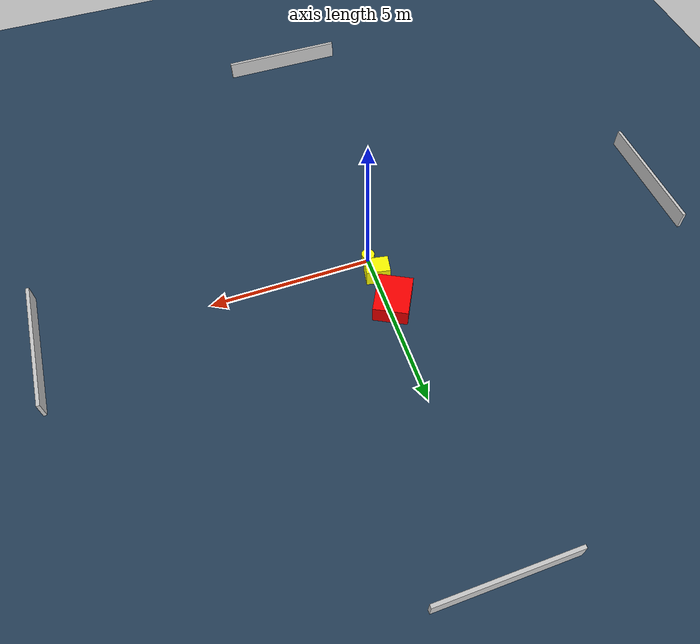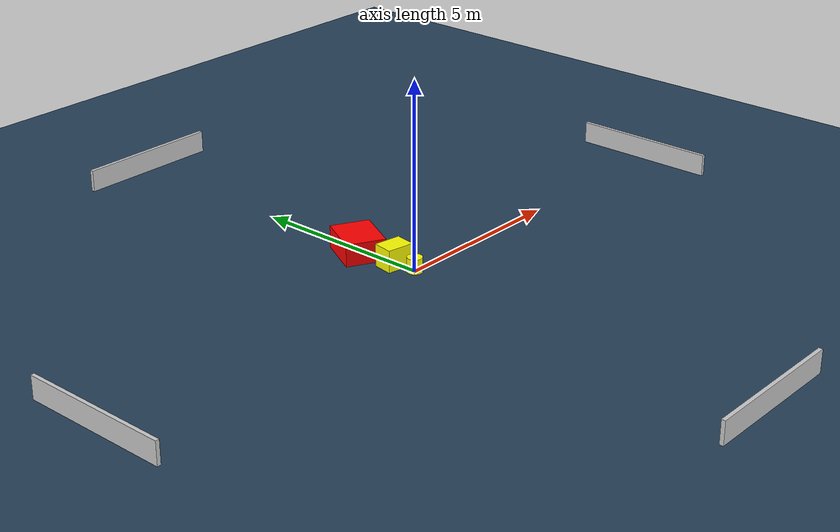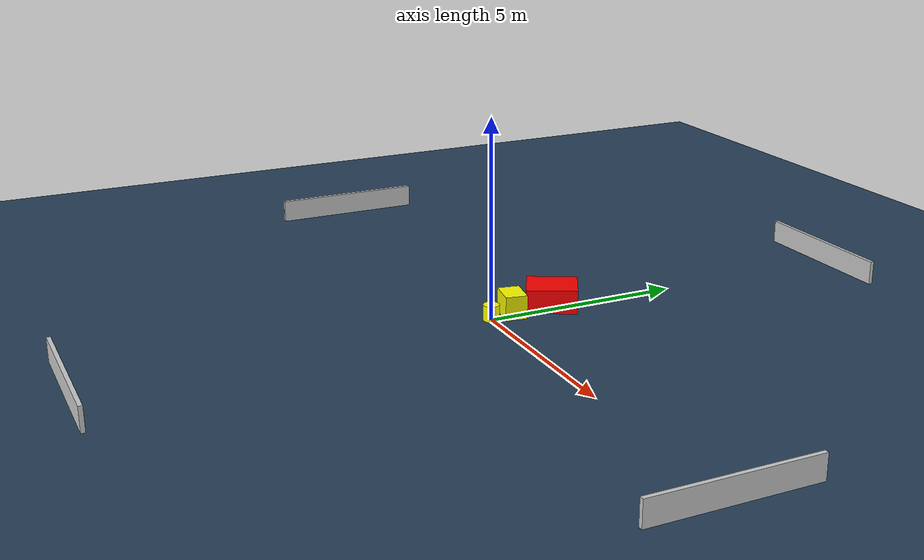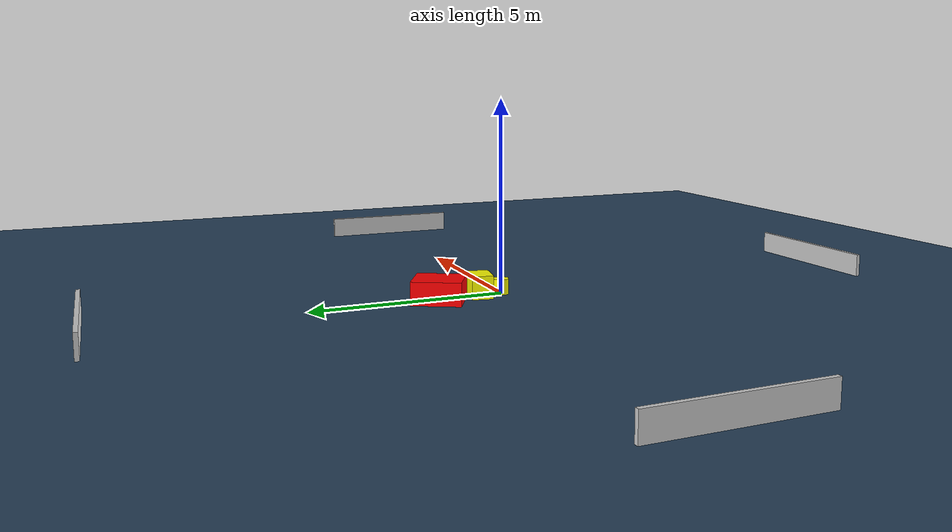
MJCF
<?xml version="1.0" ?>
<mujoco model="generated_environment">
  <option timestep="0.01" integrator="RK4" cone="elliptic"/>
  <default>
    <geom density="1"/>
  </default>
  <asset>
    <texture builtin="gradient" height="3072" name="skybox" rgb1="0.3 0.5 0.7" rgb2="0 0 0" type="skybox" width="512"/>
    <texture builtin="checker" height="300" name="groundplane" rgb1="0.2 0.3 0.4" rgb2="0.1 0.2 0.3" type="2d" width="300"/>
    <material name="groundplane" reflectance="0.2" texrepeat="5 5" texture="groundplane"/>
  </asset>
  <worldbody>
    <light dir="0 0 -1" directional="true" pos="0 0 1.5"/>
    <geom condim="3" friction="0.5 0.005 0.001" material="groundplane" name="floor" pos="0 0 0" size="0 0 0.05" type="plane"/>
    <body name="walls">
      <geom name="wall_1" condim="4" pos="-10.0 0.0 0.3" rgba="0.800000011920929 0.800000011920929 0.800000011920929 1.0" size="0.05 2.0 0.3" type="box"/>
      <geom name="wall_2" condim="4" pos="10.0 0.0 0.3" rgba="0.800000011920929 0.800000011920929 0.800000011920929 1.0" size="0.05 2.0 0.3" type="box"/>
      <geom name="wall_3" condim="4" pos="0.0 -10.0 0.3" rgba="0.800000011920929 0.800000011920929 0.800000011920929 1.0" size="2.0 0.05 0.3" type="box"/>
      <geom name="wall_4" condim="4" pos="0.0 10.0 0.3" rgba="0.800000011920929 0.800000011920929 0.800000011920929 1.0" size="2.0 0.05 0.3" type="box"/>
    </body>
    <body name="robot">
      <joint name="joint_x" type="slide" pos="0 0 0" axis="1 0 0"/>
      <joint name="joint_y" type="slide" pos="0 0 0" axis="0 1 0"/>
      <geom name="robot" type="cylinder" pos="0.0 0.0 0.2" size="0.2 0.2 0.0" mass="5.0" friction="1.0 0.005 0.0001" condim="4" rgba="1.0 1.0 0.0 1.0"/>
    </body>
    <body name="obstacle_1_movable">
      <geom name="obstacle_1_movable" condim="4" pos="-0.08313491638570868 0.6133638009624786 0.3" euler="0 0 349.9017781182017" friction="0.0 0.005 0.001" rgba="1.0 1.0 0.0 1.0" size="0.3678596874105915 0.27274918411997834 0.3" type="box" mass="0.1"/>
      <joint type="free"/>
    </body>
    <body name="obstacle_2_static">
      <geom name="obstacle_2_static" condim="4" pos="-0.1753684710905757 1.7540438488053447 0.3" euler="0 0 242.0649602275886" friction="0.0 0.005 0.001" rgba="1.0 0.0 0.0 1.0" size="0.6340008301044708 0.5276166002794601 0.3" type="box"/>
    </body>
  </worldbody>
  <actuator>
    <motor name="actuator_x" joint="joint_x" gear="1" ctrlrange="-1 1"/>
    <motor name="actuator_y" joint="joint_y" gear="1" ctrlrange="-1 1"/>
  </actuator>
</mujoco>
